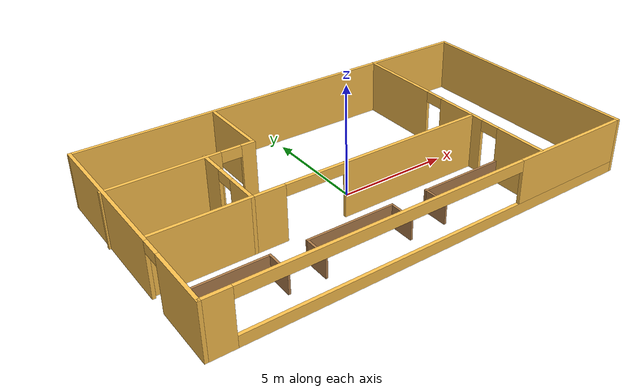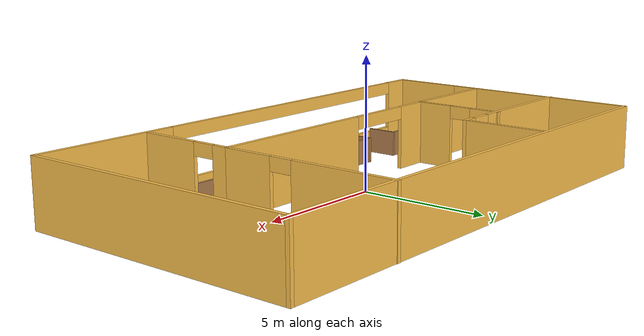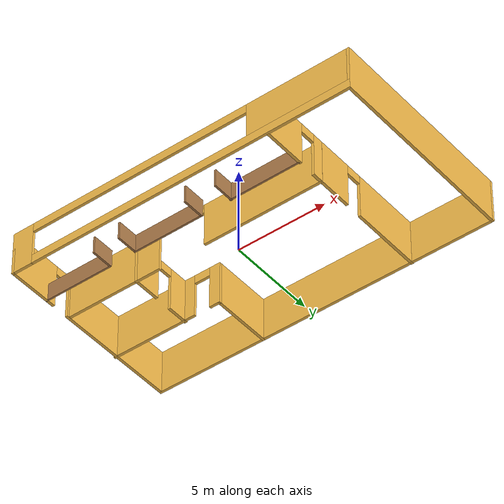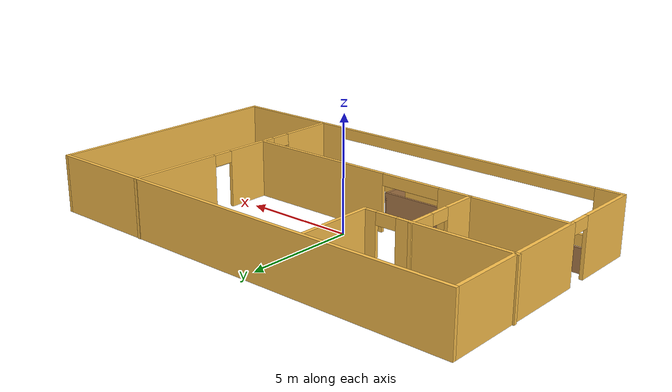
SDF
<?xml version='1.0'?>
<sdf version='1.7'>
  <model name='office'>
    <pose>0.498007 0.240181 0 0 -0 0</pose>
    <link name='Wall_0'>
      <pose>-9.76382 -0.012333 0 0 -0 -1.5708</pose>
      <visual name='Wall_0_Visual_0'>
        <pose>-1.92357 0 1.25 0 -0 0</pose>
        <geometry>
          <box>
            <size>7.15286 0.15 2.5</size>
          </box>
        </geometry>
        <material>
          <script>
            <uri>file://media/materials/scripts/gazebo.material</uri>
            <name>Gazebo/Grey</name>
          </script>
          <ambient>1 0.764706 0.305882 1</ambient>
        </material>
        <meta>
          <layer>0</layer>
        </meta>
      </visual>
      <collision name='Wall_0_Collision_0'>
        <geometry>
          <box>
            <size>7.15286 0.15 2.5</size>
          </box>
        </geometry>
        <pose>-1.92357 0 1.25 0 -0 0</pose>
      </collision>
      <visual name='Wall_0_Visual_1'>
        <pose>4.02643 0 1.25 0 -0 0</pose>
        <geometry>
          <box>
            <size>2.94714 0.15 2.5</size>
          </box>
        </geometry>
        <material>
          <script>
            <uri>file://media/materials/scripts/gazebo.material</uri>
            <name>Gazebo/Grey</name>
          </script>
          <ambient>1 0.764706 0.305882 1</ambient>
        </material>
        <meta>
          <layer>0</layer>
        </meta>
      </visual>
      <collision name='Wall_0_Collision_1'>
        <geometry>
          <box>
            <size>2.94714 0.15 2.5</size>
          </box>
        </geometry>
        <pose>4.02643 0 1.25 0 -0 0</pose>
      </collision>
      <visual name='Wall_0_Visual_2'>
        <pose>2.10286 0 2.25 0 -0 0</pose>
        <geometry>
          <box>
            <size>0.9 0.15 0.5</size>
          </box>
        </geometry>
        <material>
          <script>
            <uri>file://media/materials/scripts/gazebo.material</uri>
            <name>Gazebo/Grey</name>
          </script>
          <ambient>1 0.764706 0.305882 1</ambient>
        </material>
        <meta>
          <layer>0</layer>
        </meta>
      </visual>
      <collision name='Wall_0_Collision_2'>
        <geometry>
          <box>
            <size>0.9 0.15 0.5</size>
          </box>
        </geometry>
        <pose>2.10286 0 2.25 0 -0 0</pose>
      </collision>
    </link>
    <link name='Wall_1'>
      <pose>0.036176 -5.43733 0 0 -0 0</pose>
      <visual name='Wall_1_Visual_0'>
        <pose>-9.26139 0 1.25 0 -0 0</pose>
        <geometry>
          <box>
            <size>1.22722 0.15 2.5</size>
          </box>
        </geometry>
        <material>
          <script>
            <uri>file://media/materials/scripts/gazebo.material</uri>
            <name>Gazebo/Grey</name>
          </script>
          <ambient>1 0.764706 0.305882 1</ambient>
        </material>
        <meta>
          <layer>0</layer>
        </meta>
      </visual>
      <collision name='Wall_1_Collision_0'>
        <geometry>
          <box>
            <size>1.22722 0.15 2.5</size>
          </box>
        </geometry>
        <pose>-9.26139 0 1.25 0 -0 0</pose>
      </collision>
      <visual name='Wall_1_Visual_1'>
        <pose>0.613611 0 0.25 0 -0 0</pose>
        <geometry>
          <box>
            <size>18.5228 0.15 0.5</size>
          </box>
        </geometry>
        <material>
          <script>
            <uri>file://media/materials/scripts/gazebo.material</uri>
            <name>Gazebo/Grey</name>
          </script>
          <ambient>1 0.764706 0.305882 1</ambient>
        </material>
        <meta>
          <layer>0</layer>
        </meta>
      </visual>
      <collision name='Wall_1_Collision_1'>
        <geometry>
          <box>
            <size>18.5228 0.15 0.5</size>
          </box>
        </geometry>
        <pose>0.613611 0 0.25 0 -0 0</pose>
      </collision>
      <visual name='Wall_1_Visual_2'>
        <pose>6.96961 0 1.5 0 -0 0</pose>
        <geometry>
          <box>
            <size>5.81078 0.15 2</size>
          </box>
        </geometry>
        <material>
          <script>
            <uri>file://media/materials/scripts/gazebo.material</uri>
            <name>Gazebo/Grey</name>
          </script>
          <ambient>1 0.764706 0.305882 1</ambient>
        </material>
        <meta>
          <layer>0</layer>
        </meta>
      </visual>
      <collision name='Wall_1_Collision_2'>
        <geometry>
          <box>
            <size>5.81078 0.15 2</size>
          </box>
        </geometry>
        <pose>6.96961 0 1.5 0 -0 0</pose>
      </collision>
      <visual name='Wall_1_Visual_3'>
        <pose>-2.29178 0 2.25 0 -0 0</pose>
        <geometry>
          <box>
            <size>12.712 0.15 0.5</size>
          </box>
        </geometry>
        <material>
          <script>
            <uri>file://media/materials/scripts/gazebo.material</uri>
            <name>Gazebo/Grey</name>
          </script>
          <ambient>1 0.764706 0.305882 1</ambient>
        </material>
        <meta>
          <layer>0</layer>
        </meta>
      </visual>
      <collision name='Wall_1_Collision_3'>
        <geometry>
          <box>
            <size>12.712 0.15 0.5</size>
          </box>
        </geometry>
        <pose>-2.29178 0 2.25 0 -0 0</pose>
      </collision>
    </link>
    <link name='Wall_10'>
      <pose>-5.60131 0.324548 0 0 -0 -1.5708</pose>
      <visual name='Wall_10_Visual_0'>
        <pose>-1.23362 0 1.25 0 -0 0</pose>
        <geometry>
          <box>
            <size>1.28275 0.15 2.5</size>
          </box>
        </geometry>
        <material>
          <script>
            <uri>file://media/materials/scripts/gazebo.material</uri>
            <name>Gazebo/Grey</name>
          </script>
          <ambient>1 0.764706 0.305882 1</ambient>
        </material>
        <meta>
          <layer>0</layer>
        </meta>
      </visual>
      <collision name='Wall_10_Collision_0'>
        <geometry>
          <box>
            <size>1.28275 0.15 2.5</size>
          </box>
        </geometry>
        <pose>-1.23362 0 1.25 0 -0 0</pose>
      </collision>
      <visual name='Wall_10_Visual_1'>
        <pose>1.09138 0 1.25 0 -0 0</pose>
        <geometry>
          <box>
            <size>1.56725 0.15 2.5</size>
          </box>
        </geometry>
        <material>
          <script>
            <uri>file://media/materials/scripts/gazebo.material</uri>
            <name>Gazebo/Grey</name>
          </script>
          <ambient>1 0.764706 0.305882 1</ambient>
        </material>
        <meta>
          <layer>0</layer>
        </meta>
      </visual>
      <collision name='Wall_10_Collision_1'>
        <geometry>
          <box>
            <size>1.56725 0.15 2.5</size>
          </box>
        </geometry>
        <pose>1.09138 0 1.25 0 -0 0</pose>
      </collision>
      <visual name='Wall_10_Visual_2'>
        <pose>-0.142246 0 2.25 0 -0 0</pose>
        <geometry>
          <box>
            <size>0.9 0.15 0.5</size>
          </box>
        </geometry>
        <material>
          <script>
            <uri>file://media/materials/scripts/gazebo.material</uri>
            <name>Gazebo/Grey</name>
          </script>
          <ambient>1 0.764706 0.305882 1</ambient>
        </material>
        <meta>
          <layer>0</layer>
        </meta>
      </visual>
      <collision name='Wall_10_Collision_2'>
        <geometry>
          <box>
            <size>0.9 0.15 0.5</size>
          </box>
        </geometry>
        <pose>-0.142246 0 2.25 0 -0 0</pose>
      </collision>
    </link>
    <link name='Wall_11'>
      <collision name='Wall_11_Collision'>
        <geometry>
          <box>
            <size>4.25 0.15 2.5</size>
          </box>
        </geometry>
        <pose>0 0 1.25 0 -0 0</pose>
      </collision>
      <visual name='Wall_11_Visual'>
        <pose>0 0 1.25 0 -0 0</pose>
        <geometry>
          <box>
            <size>4.25 0.15 2.5</size>
          </box>
        </geometry>
        <material>
          <script>
            <uri>file://media/materials/scripts/gazebo.material</uri>
            <name>Gazebo/Grey</name>
          </script>
          <ambient>1 0.764706 0.305882 1</ambient>
        </material>
        <meta>
          <layer>0</layer>
        </meta>
      </visual>
      <pose>-7.65131 -1.47545 0 0 -0 3.14159</pose>
    </link>
    <link name='Wall_13'>
      <pose>-0.176313 -1.47545 0 0 -0 0</pose>
      <visual name='Wall_13_Visual_0'>
        <pose>-4.76061 0 1.25 0 -0 0</pose>
        <geometry>
          <box>
            <size>1.47879 0.15 2.5</size>
          </box>
        </geometry>
        <material>
          <script>
            <uri>file://media/materials/scripts/gazebo.material</uri>
            <name>Gazebo/Grey</name>
          </script>
          <ambient>1 0.764706 0.305882 1</ambient>
        </material>
        <meta>
          <layer>0</layer>
        </meta>
      </visual>
      <collision name='Wall_13_Collision_0'>
        <geometry>
          <box>
            <size>1.47879 0.15 2.5</size>
          </box>
        </geometry>
        <pose>-4.76061 0 1.25 0 -0 0</pose>
      </collision>
      <visual name='Wall_13_Visual_1'>
        <pose>2.07992 0 1.25 0 -0 0</pose>
        <geometry>
          <box>
            <size>6.84016 0.15 2.5</size>
          </box>
        </geometry>
        <material>
          <script>
            <uri>file://media/materials/scripts/gazebo.material</uri>
            <name>Gazebo/Grey</name>
          </script>
          <ambient>1 0.764706 0.305882 1</ambient>
        </material>
        <meta>
          <layer>0</layer>
        </meta>
      </visual>
      <collision name='Wall_13_Collision_1'>
        <geometry>
          <box>
            <size>6.84016 0.15 2.5</size>
          </box>
        </geometry>
        <pose>2.07992 0 1.25 0 -0 0</pose>
      </collision>
      <visual name='Wall_13_Visual_2'>
        <pose>-2.68068 0 2.25 0 -0 0</pose>
        <geometry>
          <box>
            <size>2.68106 0.15 0.5</size>
          </box>
        </geometry>
        <material>
          <script>
            <uri>file://media/materials/scripts/gazebo.material</uri>
            <name>Gazebo/Grey</name>
          </script>
          <ambient>1 0.764706 0.305882 1</ambient>
        </material>
        <meta>
          <layer>0</layer>
        </meta>
      </visual>
      <collision name='Wall_13_Collision_2'>
        <geometry>
          <box>
            <size>2.68106 0.15 0.5</size>
          </box>
        </geometry>
        <pose>-2.68068 0 2.25 0 -0 0</pose>
      </collision>
    </link>
    <link name='Wall_14'>
      <pose>5.24869 -3.40045 0 0 -0 -1.5708</pose>
      <visual name='Wall_14_Visual_0'>
        <pose>-1.65386 0 1.25 0 -0 0</pose>
        <geometry>
          <box>
            <size>0.692275 0.15 2.5</size>
          </box>
        </geometry>
        <material>
          <script>
            <uri>file://media/materials/scripts/gazebo.material</uri>
            <name>Gazebo/Grey</name>
          </script>
          <ambient>1 0.764706 0.305882 1</ambient>
        </material>
        <meta>
          <layer>0</layer>
        </meta>
      </visual>
      <collision name='Wall_14_Collision_0'>
        <geometry>
          <box>
            <size>0.692275 0.15 2.5</size>
          </box>
        </geometry>
        <pose>-1.65386 0 1.25 0 -0 0</pose>
      </collision>
      <visual name='Wall_14_Visual_1'>
        <pose>0.796137 0 1.25 0 -0 0</pose>
        <geometry>
          <box>
            <size>2.40773 0.15 2.5</size>
          </box>
        </geometry>
        <material>
          <script>
            <uri>file://media/materials/scripts/gazebo.material</uri>
            <name>Gazebo/Grey</name>
          </script>
          <ambient>1 0.764706 0.305882 1</ambient>
        </material>
        <meta>
          <layer>0</layer>
        </meta>
      </visual>
      <collision name='Wall_14_Collision_1'>
        <geometry>
          <box>
            <size>2.40773 0.15 2.5</size>
          </box>
        </geometry>
        <pose>0.796137 0 1.25 0 -0 0</pose>
      </collision>
      <visual name='Wall_14_Visual_2'>
        <pose>-0.857725 0 2.25 0 -0 0</pose>
        <geometry>
          <box>
            <size>0.9 0.15 0.5</size>
          </box>
        </geometry>
        <material>
          <script>
            <uri>file://media/materials/scripts/gazebo.material</uri>
            <name>Gazebo/Grey</name>
          </script>
          <ambient>1 0.764706 0.305882 1</ambient>
        </material>
        <meta>
          <layer>0</layer>
        </meta>
      </visual>
      <collision name='Wall_14_Collision_2'>
        <geometry>
          <box>
            <size>0.9 0.15 0.5</size>
          </box>
        </geometry>
        <pose>-0.857725 0 2.25 0 -0 0</pose>
      </collision>
    </link>
    <link name='Wall_17'>
      <pose>5.25028 2.01233 0 0 -0 -1.5708</pose>
      <visual name='Wall_17_Visual_0'>
        <pose>-1.43227 0 1.25 0 -0 0</pose>
        <geometry>
          <box>
            <size>4.13547 0.15 2.5</size>
          </box>
        </geometry>
        <material>
          <script>
            <uri>file://media/materials/scripts/gazebo.material</uri>
            <name>Gazebo/Grey</name>
          </script>
          <ambient>1 0.764706 0.305882 1</ambient>
        </material>
        <meta>
          <layer>0</layer>
        </meta>
      </visual>
      <collision name='Wall_17_Collision_0'>
        <geometry>
          <box>
            <size>4.13547 0.15 2.5</size>
          </box>
        </geometry>
        <pose>-1.43227 0 1.25 0 -0 0</pose>
      </collision>
      <visual name='Wall_17_Visual_1'>
        <pose>2.51773 0 1.25 0 -0 0</pose>
        <geometry>
          <box>
            <size>1.96453 0.15 2.5</size>
          </box>
        </geometry>
        <material>
          <script>
            <uri>file://media/materials/scripts/gazebo.material</uri>
            <name>Gazebo/Grey</name>
          </script>
          <ambient>1 0.764706 0.305882 1</ambient>
        </material>
        <meta>
          <layer>0</layer>
        </meta>
      </visual>
      <collision name='Wall_17_Collision_1'>
        <geometry>
          <box>
            <size>1.96453 0.15 2.5</size>
          </box>
        </geometry>
        <pose>2.51773 0 1.25 0 -0 0</pose>
      </collision>
      <visual name='Wall_17_Visual_2'>
        <pose>1.08547 0 2.25 0 -0 0</pose>
        <geometry>
          <box>
            <size>0.9 0.15 0.5</size>
          </box>
        </geometry>
        <material>
          <script>
            <uri>file://media/materials/scripts/gazebo.material</uri>
            <name>Gazebo/Grey</name>
          </script>
          <ambient>1 0.764706 0.305882 1</ambient>
        </material>
        <meta>
          <layer>0</layer>
        </meta>
      </visual>
      <collision name='Wall_17_Collision_2'>
        <geometry>
          <box>
            <size>0.9 0.15 0.5</size>
          </box>
        </geometry>
        <pose>1.08547 0 2.25 0 -0 0</pose>
      </collision>
    </link>
    <link name='Wall_2'>
      <collision name='Wall_2_Collision'>
        <geometry>
          <box>
            <size>11 0.15 2.5</size>
          </box>
        </geometry>
        <pose>0 0 1.25 0 -0 0</pose>
      </collision>
      <visual name='Wall_2_Visual'>
        <pose>0 0 1.25 0 -0 0</pose>
        <geometry>
          <box>
            <size>11 0.15 2.5</size>
          </box>
        </geometry>
        <material>
          <script>
            <uri>file://media/materials/scripts/gazebo.material</uri>
            <name>Gazebo/Grey</name>
          </script>
          <ambient>1 0.764706 0.305882 1</ambient>
        </material>
        <meta>
          <layer>0</layer>
        </meta>
      </visual>
      <pose>9.83618 -0.012333 0 0 -0 1.5708</pose>
    </link>
    <link name='Wall_20'>
      <collision name='Wall_20_Collision'>
        <geometry>
          <box>
            <size>4 0.1 1</size>
          </box>
        </geometry>
        <pose>0 0 0.5 0 -0 0</pose>
      </collision>
      <visual name='Wall_20_Visual'>
        <pose>0 0 0.5 0 -0 0</pose>
        <geometry>
          <box>
            <size>4 0.1 1</size>
          </box>
        </geometry>
        <material>
          <script>
            <uri>file://media/materials/scripts/gazebo.material</uri>
            <name>Gazebo/Wood</name>
          </script>
          <ambient>1 1 1 1</ambient>
        </material>
        <meta>
          <layer>0</layer>
        </meta>
      </visual>
      <pose>-7.83601 -3.05118 0 0 -0 0</pose>
    </link>
    <link name='Wall_21'>
      <collision name='Wall_21_Collision'>
        <geometry>
          <box>
            <size>1.25 0.1 1</size>
          </box>
        </geometry>
        <pose>0 0 0.5 0 -0 0</pose>
      </collision>
      <visual name='Wall_21_Visual'>
        <pose>0 0 0.5 0 -0 0</pose>
        <geometry>
          <box>
            <size>1.25 0.1 1</size>
          </box>
        </geometry>
        <material>
          <script>
            <uri>file://media/materials/scripts/gazebo.material</uri>
            <name>Gazebo/Wood</name>
          </script>
          <ambient>1 1 1 1</ambient>
        </material>
        <meta>
          <layer>0</layer>
        </meta>
      </visual>
      <pose>-5.88601 -3.62618 0 0 -0 -1.5708</pose>
    </link>
    <link name='Wall_26'>
      <collision name='Wall_26_Collision'>
        <geometry>
          <box>
            <size>4.02313 0.1 1</size>
          </box>
        </geometry>
        <pose>0 0 0.5 0 -0 0</pose>
      </collision>
      <visual name='Wall_26_Visual'>
        <pose>0 0 0.5 0 -0 0</pose>
        <geometry>
          <box>
            <size>4.02313 0.1 1</size>
          </box>
        </geometry>
        <material>
          <script>
            <uri>file://media/materials/scripts/gazebo.material</uri>
            <name>Gazebo/Wood</name>
          </script>
          <ambient>1 1 1 1</ambient>
        </material>
        <meta>
          <layer>0</layer>
        </meta>
      </visual>
      <pose>-2.38332 -3.09744 0 0 -0 0</pose>
    </link>
    <link name='Wall_29'>
      <collision name='Wall_29_Collision'>
        <geometry>
          <box>
            <size>1.25 0.1 1</size>
          </box>
        </geometry>
        <pose>0 0 0.5 0 -0 0</pose>
      </collision>
      <visual name='Wall_29_Visual'>
        <pose>0 0 0.5 0 -0 0</pose>
        <geometry>
          <box>
            <size>1.25 0.1 1</size>
          </box>
        </geometry>
        <material>
          <script>
            <uri>file://media/materials/scripts/gazebo.material</uri>
            <name>Gazebo/Wood</name>
          </script>
          <ambient>1 1 1 1</ambient>
        </material>
        <meta>
          <layer>0</layer>
        </meta>
      </visual>
      <pose>-0.42175 -3.67244 0 0 -0 -1.5708</pose>
    </link>
    <link name='Wall_3'>
      <collision name='Wall_3_Collision'>
        <geometry>
          <box>
            <size>19.75 0.15 2.5</size>
          </box>
        </geometry>
        <pose>0 0 1.25 0 -0 0</pose>
      </collision>
      <visual name='Wall_3_Visual'>
        <pose>0 0 1.25 0 -0 0</pose>
        <geometry>
          <box>
            <size>19.75 0.15 2.5</size>
          </box>
        </geometry>
        <material>
          <script>
            <uri>file://media/materials/scripts/gazebo.material</uri>
            <name>Gazebo/Grey</name>
          </script>
          <ambient>1 0.764706 0.305882 1</ambient>
        </material>
        <meta>
          <layer>0</layer>
        </meta>
      </visual>
      <pose>0.036176 5.41267 0 0 -0 3.14159</pose>
    </link>
    <link name='Wall_31'>
      <collision name='Wall_31_Collision'>
        <geometry>
          <box>
            <size>1.25 0.1 1</size>
          </box>
        </geometry>
        <pose>0 0 0.5 0 -0 0</pose>
      </collision>
      <visual name='Wall_31_Visual'>
        <pose>0 0 0.5 0 -0 0</pose>
        <geometry>
          <box>
            <size>1.25 0.1 1</size>
          </box>
        </geometry>
        <material>
          <script>
            <uri>file://media/materials/scripts/gazebo.material</uri>
            <name>Gazebo/Wood</name>
          </script>
          <ambient>1 1 1 1</ambient>
        </material>
        <meta>
          <layer>0</layer>
        </meta>
      </visual>
      <pose>-4.34488 -3.67244 0 0 -0 -1.5708</pose>
    </link>
    <link name='Wall_33'>
      <collision name='Wall_33_Collision'>
        <geometry>
          <box>
            <size>4 0.1 1</size>
          </box>
        </geometry>
        <pose>0 0 0.5 0 -0 0</pose>
      </collision>
      <visual name='Wall_33_Visual'>
        <pose>0 0 0.5 0 -0 0</pose>
        <geometry>
          <box>
            <size>4 0.1 1</size>
          </box>
        </geometry>
        <material>
          <script>
            <uri>file://media/materials/scripts/gazebo.material</uri>
            <name>Gazebo/Wood</name>
          </script>
          <ambient>1 1 1 1</ambient>
        </material>
        <meta>
          <layer>0</layer>
        </meta>
      </visual>
      <pose>3.24539 -3.09797 0 0 -0 4.2e-05</pose>
    </link>
    <link name='Wall_36'>
      <collision name='Wall_36_Collision'>
        <geometry>
          <box>
            <size>1.25 0.1 1</size>
          </box>
        </geometry>
        <pose>0 0 0.5 0 -0 0</pose>
      </collision>
      <visual name='Wall_36_Visual'>
        <pose>0 0 0.5 0 -0 0</pose>
        <geometry>
          <box>
            <size>1.25 0.1 1</size>
          </box>
        </geometry>
        <material>
          <script>
            <uri>file://media/materials/scripts/gazebo.material</uri>
            <name>Gazebo/Wood</name>
          </script>
          <ambient>1 1 1 1</ambient>
        </material>
        <meta>
          <layer>0</layer>
        </meta>
      </visual>
      <pose>1.31852 -3.64992 0 0 -0 -1.5708</pose>
    </link>
    <link name='Wall_5'>
      <collision name='Wall_5_Collision'>
        <geometry>
          <box>
            <size>3.5 0.15 2.5</size>
          </box>
        </geometry>
        <pose>0 0 1.25 0 -0 0</pose>
      </collision>
      <visual name='Wall_5_Visual'>
        <pose>0 0 1.25 0 -0 0</pose>
        <geometry>
          <box>
            <size>3.5 0.15 2.5</size>
          </box>
        </geometry>
        <material>
          <script>
            <uri>file://media/materials/scripts/gazebo.material</uri>
            <name>Gazebo/Grey</name>
          </script>
          <ambient>1 0.764706 0.305882 1</ambient>
        </material>
        <meta>
          <layer>0</layer>
        </meta>
      </visual>
      <pose>-3.48618 3.73767 0 0 -0 -1.5708</pose>
    </link>
    <link name='Wall_6'>
      <pose>-6.66118 2.06267 0 0 -0 3.14159</pose>
      <visual name='Wall_6_Visual_0'>
        <pose>-2.93505 0 1.25 0 -0 0</pose>
        <geometry>
          <box>
            <size>0.629897 0.15 2.5</size>
          </box>
        </geometry>
        <material>
          <script>
            <uri>file://media/materials/scripts/gazebo.material</uri>
            <name>Gazebo/Grey</name>
          </script>
          <ambient>1 0.764706 0.305882 1</ambient>
        </material>
        <meta>
          <layer>0</layer>
        </meta>
      </visual>
      <collision name='Wall_6_Collision_0'>
        <geometry>
          <box>
            <size>0.629897 0.15 2.5</size>
          </box>
        </geometry>
        <pose>-2.93505 0 1.25 0 -0 0</pose>
      </collision>
      <visual name='Wall_6_Visual_1'>
        <pose>0.764949 0 1.25 0 -0 0</pose>
        <geometry>
          <box>
            <size>4.9701 0.15 2.5</size>
          </box>
        </geometry>
        <material>
          <script>
            <uri>file://media/materials/scripts/gazebo.material</uri>
            <name>Gazebo/Grey</name>
          </script>
          <ambient>1 0.764706 0.305882 1</ambient>
        </material>
        <meta>
          <layer>0</layer>
        </meta>
      </visual>
      <collision name='Wall_6_Collision_1'>
        <geometry>
          <box>
            <size>4.9701 0.15 2.5</size>
          </box>
        </geometry>
        <pose>0.764949 0 1.25 0 -0 0</pose>
      </collision>
      <visual name='Wall_6_Visual_2'>
        <pose>-2.1701 0 2.25 0 -0 0</pose>
        <geometry>
          <box>
            <size>0.9 0.15 0.5</size>
          </box>
        </geometry>
        <material>
          <script>
            <uri>file://media/materials/scripts/gazebo.material</uri>
            <name>Gazebo/Grey</name>
          </script>
          <ambient>1 0.764706 0.305882 1</ambient>
        </material>
        <meta>
          <layer>0</layer>
        </meta>
      </visual>
      <collision name='Wall_6_Collision_2'>
        <geometry>
          <box>
            <size>0.9 0.15 0.5</size>
          </box>
        </geometry>
        <pose>-2.1701 0 2.25 0 -0 0</pose>
      </collision>
    </link>
    <static>1</static>
  </model>
</sdf>
